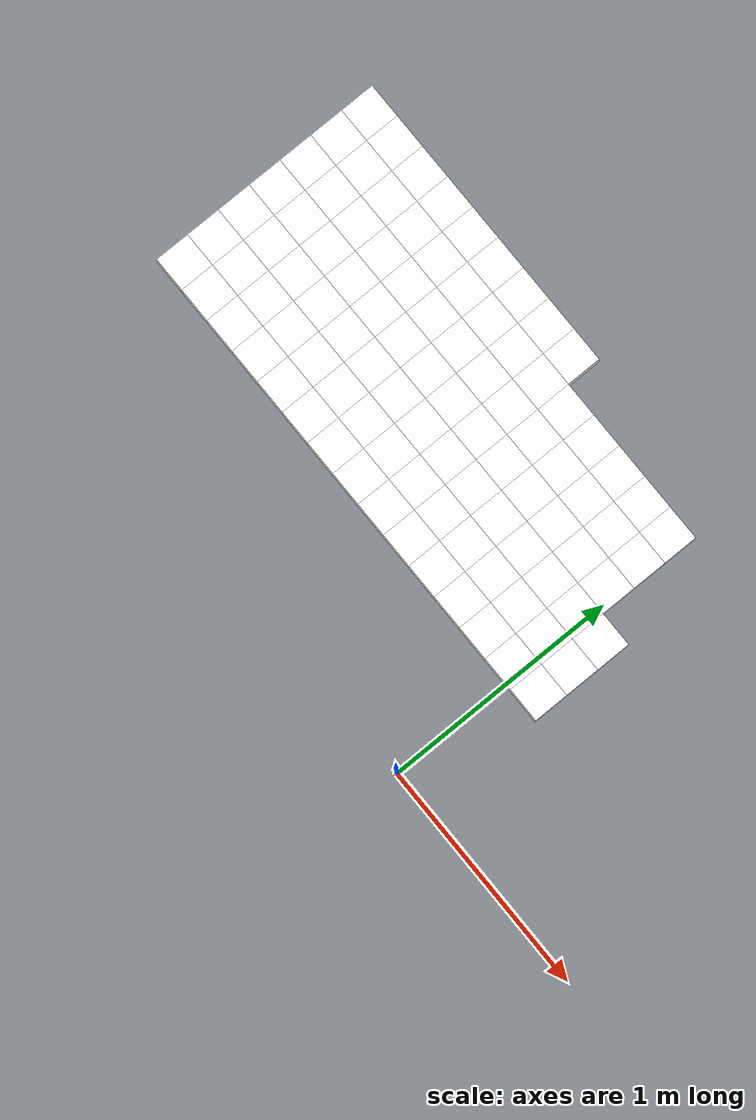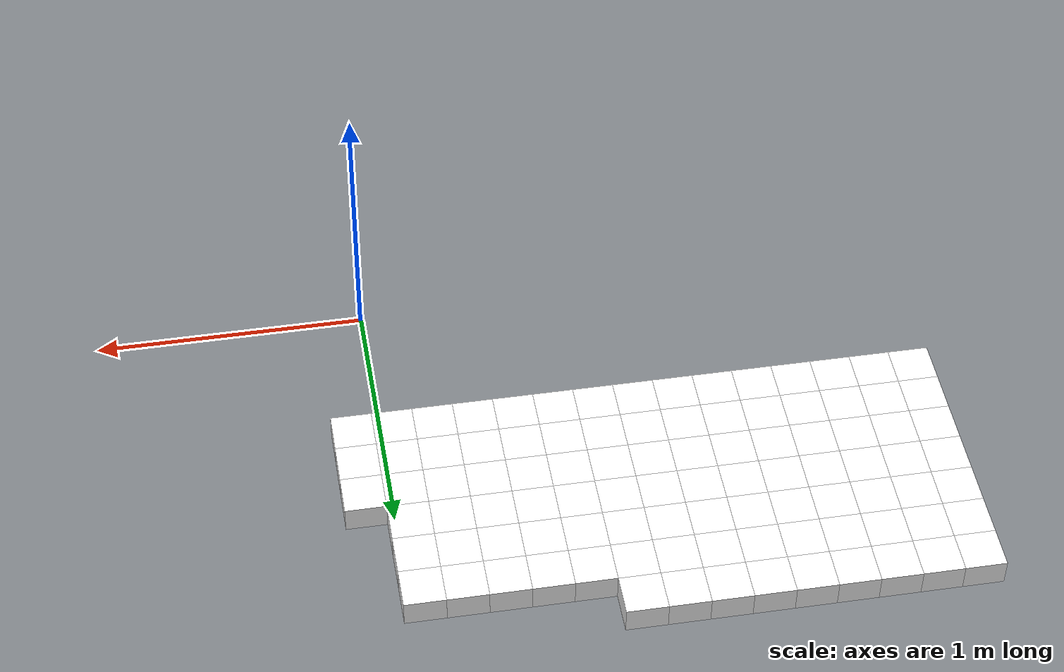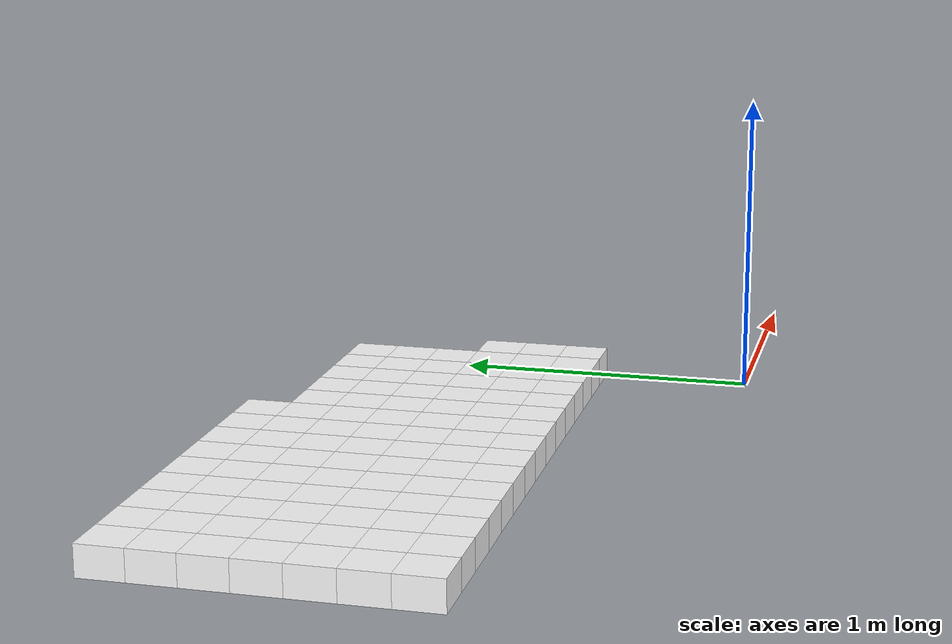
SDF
<sdf version="1.7">
 <world name="default">
  <include><uri>model://sun</uri></include>
  <model name="static_environment">
   <static>true</static>
   <link name="region_0">
    <pose>-2.0 0.6 0.0 0.0 0.0 0.0</pose>
    <collision name="region_0_collision">
     <geometry><box><size>0.15 0.15 0.1</size></box></geometry>
     <surface><friction><ode><mu>1.0</mu><mu2>1.0</mu2></ode></friction></surface>
    </collision>
    <visual name="region_0_visual">
     <geometry><box><size>0.15 0.15 0.1</size></box></geometry>
     <material><ambient>1.0 1.0 1.0 1.0</ambient><diffuse>1.0 1.0 1.0 1.0</diffuse></material>
    </visual>
   </link>
   <link name="region_1">
    <pose>-1.85 0.6 0.0 0.0 0.0 0.0</pose>
    <collision name="region_1_collision">
     <geometry><box><size>0.15 0.15 0.1</size></box></geometry>
     <surface><friction><ode><mu>1.0</mu><mu2>1.0</mu2></ode></friction></surface>
    </collision>
    <visual name="region_1_visual">
     <geometry><box><size>0.15 0.15 0.1</size></box></geometry>
     <material><ambient>1.0 1.0 1.0 1.0</ambient><diffuse>1.0 1.0 1.0 1.0</diffuse></material>
    </visual>
   </link>
   <link name="region_2">
    <pose>-1.7 0.6 0.0 0.0 0.0 0.0</pose>
    <collision name="region_2_collision">
     <geometry><box><size>0.15 0.15 0.1</size></box></geometry>
     <surface><friction><ode><mu>1.0</mu><mu2>1.0</mu2></ode></friction></surface>
    </collision>
    <visual name="region_2_visual">
     <geometry><box><size>0.15 0.15 0.1</size></box></geometry>
     <material><ambient>1.0 1.0 1.0 1.0</ambient><diffuse>1.0 1.0 1.0 1.0</diffuse></material>
    </visual>
   </link>
   <link name="region_3">
    <pose>-1.55 0.6 0.0 0.0 0.0 0.0</pose>
    <collision name="region_3_collision">
     <geometry><box><size>0.15 0.15 0.1</size></box></geometry>
     <surface><friction><ode><mu>1.0</mu><mu2>1.0</mu2></ode></friction></surface>
    </collision>
    <visual name="region_3_visual">
     <geometry><box><size>0.15 0.15 0.1</size></box></geometry>
     <material><ambient>1.0 1.0 1.0 1.0</ambient><diffuse>1.0 1.0 1.0 1.0</diffuse></material>
    </visual>
   </link>
   <link name="region_4">
    <pose>-1.4 0.6 0.0 0.0 0.0 0.0</pose>
    <collision name="region_4_collision">
     <geometry><box><size>0.15 0.15 0.1</size></box></geometry>
     <surface><friction><ode><mu>1.0</mu><mu2>1.0</mu2></ode></friction></surface>
    </collision>
    <visual name="region_4_visual">
     <geometry><box><size>0.15 0.15 0.1</size></box></geometry>
     <material><ambient>1.0 1.0 1.0 1.0</ambient><diffuse>1.0 1.0 1.0 1.0</diffuse></material>
    </visual>
   </link>
   <link name="region_5">
    <pose>-1.25 0.6 0.0 0.0 0.0 0.0</pose>
    <collision name="region_5_collision">
     <geometry><box><size>0.15 0.15 0.1</size></box></geometry>
     <surface><friction><ode><mu>1.0</mu><mu2>1.0</mu2></ode></friction></surface>
    </collision>
    <visual name="region_5_visual">
     <geometry><box><size>0.15 0.15 0.1</size></box></geometry>
     <material><ambient>1.0 1.0 1.0 1.0</ambient><diffuse>1.0 1.0 1.0 1.0</diffuse></material>
    </visual>
   </link>
   <link name="region_6">
    <pose>-1.1 0.6 0.0 0.0 0.0 0.0</pose>
    <collision name="region_6_collision">
     <geometry><box><size>0.15 0.15 0.1</size></box></geometry>
     <surface><friction><ode><mu>1.0</mu><mu2>1.0</mu2></ode></friction></surface>
    </collision>
    <visual name="region_6_visual">
     <geometry><box><size>0.15 0.15 0.1</size></box></geometry>
     <material><ambient>1.0 1.0 1.0 1.0</ambient><diffuse>1.0 1.0 1.0 1.0</diffuse></material>
    </visual>
   </link>
   <link name="region_7">
    <pose>-0.95 0.6 0.0 0.0 0.0 0.0</pose>
    <collision name="region_7_collision">
     <geometry><box><size>0.15 0.15 0.1</size></box></geometry>
     <surface><friction><ode><mu>1.0</mu><mu2>1.0</mu2></ode></friction></surface>
    </collision>
    <visual name="region_7_visual">
     <geometry><box><size>0.15 0.15 0.1</size></box></geometry>
     <material><ambient>1.0 1.0 1.0 1.0</ambient><diffuse>1.0 1.0 1.0 1.0</diffuse></material>
    </visual>
   </link>
   <link name="region_8">
    <pose>-0.8 0.6 0.0 0.0 0.0 0.0</pose>
    <collision name="region_8_collision">
     <geometry><box><size>0.15 0.15 0.1</size></box></geometry>
     <surface><friction><ode><mu>1.0</mu><mu2>1.0</mu2></ode></friction></surface>
    </collision>
    <visual name="region_8_visual">
     <geometry><box><size>0.15 0.15 0.1</size></box></geometry>
     <material><ambient>1.0 1.0 1.0 1.0</ambient><diffuse>1.0 1.0 1.0 1.0</diffuse></material>
    </visual>
   </link>
   <link name="region_9">
    <pose>-0.6500000000000001 0.6 0.0 0.0 0.0 0.0</pose>
    <collision name="region_9_collision">
     <geometry><box><size>0.15 0.15 0.1</size></box></geometry>
     <surface><friction><ode><mu>1.0</mu><mu2>1.0</mu2></ode></friction></surface>
    </collision>
    <visual name="region_9_visual">
     <geometry><box><size>0.15 0.15 0.1</size></box></geometry>
     <material><ambient>1.0 1.0 1.0 1.0</ambient><diffuse>1.0 1.0 1.0 1.0</diffuse></material>
    </visual>
   </link>
   <link name="region_10">
    <pose>-0.5000000000000002 0.6 0.0 0.0 0.0 0.0</pose>
    <collision name="region_10_collision">
     <geometry><box><size>0.15 0.15 0.1</size></box></geometry>
     <surface><friction><ode><mu>1.0</mu><mu2>1.0</mu2></ode></friction></surface>
    </collision>
    <visual name="region_10_visual">
     <geometry><box><size>0.15 0.15 0.1</size></box></geometry>
     <material><ambient>1.0 1.0 1.0 1.0</ambient><diffuse>1.0 1.0 1.0 1.0</diffuse></material>
    </visual>
   </link>
   <link name="region_11">
    <pose>-0.3500000000000003 0.6 0.0 0.0 0.0 0.0</pose>
    <collision name="region_11_collision">
     <geometry><box><size>0.15 0.15 0.1</size></box></geometry>
     <surface><friction><ode><mu>1.0</mu><mu2>1.0</mu2></ode></friction></surface>
    </collision>
    <visual name="region_11_visual">
     <geometry><box><size>0.15 0.15 0.1</size></box></geometry>
     <material><ambient>1.0 1.0 1.0 1.0</ambient><diffuse>1.0 1.0 1.0 1.0</diffuse></material>
    </visual>
   </link>
   <link name="region_12">
    <pose>-0.2000000000000004 0.6 0.0 0.0 0.0 0.0</pose>
    <collision name="region_12_collision">
     <geometry><box><size>0.15 0.15 0.1</size></box></geometry>
     <surface><friction><ode><mu>1.0</mu><mu2>1.0</mu2></ode></friction></surface>
    </collision>
    <visual name="region_12_visual">
     <geometry><box><size>0.15 0.15 0.1</size></box></geometry>
     <material><ambient>1.0 1.0 1.0 1.0</ambient><diffuse>1.0 1.0 1.0 1.0</diffuse></material>
    </visual>
   </link>
   <link name="region_13">
    <pose>-0.05000000000000049 0.6 0.0 0.0 0.0 0.0</pose>
    <collision name="region_13_collision">
     <geometry><box><size>0.15 0.15 0.1</size></box></geometry>
     <surface><friction><ode><mu>1.0</mu><mu2>1.0</mu2></ode></friction></surface>
    </collision>
    <visual name="region_13_visual">
     <geometry><box><size>0.15 0.15 0.1</size></box></geometry>
     <material><ambient>1.0 1.0 1.0 1.0</ambient><diffuse>1.0 1.0 1.0 1.0</diffuse></material>
    </visual>
   </link>
   <link name="region_14">
    <pose>0.09999999999999964 0.6 0.0 0.0 0.0 0.0</pose>
    <collision name="region_14_collision">
     <geometry><box><size>0.15 0.15 0.1</size></box></geometry>
     <surface><friction><ode><mu>1.0</mu><mu2>1.0</mu2></ode></friction></surface>
    </collision>
    <visual name="region_14_visual">
     <geometry><box><size>0.15 0.15 0.1</size></box></geometry>
     <material><ambient>1.0 1.0 1.0 1.0</ambient><diffuse>1.0 1.0 1.0 1.0</diffuse></material>
    </visual>
   </link>
   <link name="region_20">
    <pose>-2.0 0.75 0.0 0.0 0.0 0.0</pose>
    <collision name="region_20_collision">
     <geometry><box><size>0.15 0.15 0.1</size></box></geometry>
     <surface><friction><ode><mu>1.0</mu><mu2>1.0</mu2></ode></friction></surface>
    </collision>
    <visual name="region_20_visual">
     <geometry><box><size>0.15 0.15 0.1</size></box></geometry>
     <material><ambient>1.0 1.0 1.0 1.0</ambient><diffuse>1.0 1.0 1.0 1.0</diffuse></material>
    </visual>
   </link>
   <link name="region_21">
    <pose>-1.85 0.75 0.0 0.0 0.0 0.0</pose>
    <collision name="region_21_collision">
     <geometry><box><size>0.15 0.15 0.1</size></box></geometry>
     <surface><friction><ode><mu>1.0</mu><mu2>1.0</mu2></ode></friction></surface>
    </collision>
    <visual name="region_21_visual">
     <geometry><box><size>0.15 0.15 0.1</size></box></geometry>
     <material><ambient>1.0 1.0 1.0 1.0</ambient><diffuse>1.0 1.0 1.0 1.0</diffuse></material>
    </visual>
   </link>
   <link name="region_22">
    <pose>-1.7 0.75 0.0 0.0 0.0 0.0</pose>
    <collision name="region_22_collision">
     <geometry><box><size>0.15 0.15 0.1</size></box></geometry>
     <surface><friction><ode><mu>1.0</mu><mu2>1.0</mu2></ode></friction></surface>
    </collision>
    <visual name="region_22_visual">
     <geometry><box><size>0.15 0.15 0.1</size></box></geometry>
     <material><ambient>1.0 1.0 1.0 1.0</ambient><diffuse>1.0 1.0 1.0 1.0</diffuse></material>
    </visual>
   </link>
   <link name="region_23">
    <pose>-1.55 0.75 0.0 0.0 0.0 0.0</pose>
    <collision name="region_23_collision">
     <geometry><box><size>0.15 0.15 0.1</size></box></geometry>
     <surface><friction><ode><mu>1.0</mu><mu2>1.0</mu2></ode></friction></surface>
    </collision>
    <visual name="region_23_visual">
     <geometry><box><size>0.15 0.15 0.1</size></box></geometry>
     <material><ambient>1.0 1.0 1.0 1.0</ambient><diffuse>1.0 1.0 1.0 1.0</diffuse></material>
    </visual>
   </link>
   <link name="region_24">
    <pose>-1.4 0.75 0.0 0.0 0.0 0.0</pose>
    <collision name="region_24_collision">
     <geometry><box><size>0.15 0.15 0.1</size></box></geometry>
     <surface><friction><ode><mu>1.0</mu><mu2>1.0</mu2></ode></friction></surface>
    </collision>
    <visual name="region_24_visual">
     <geometry><box><size>0.15 0.15 0.1</size></box></geometry>
     <material><ambient>1.0 1.0 1.0 1.0</ambient><diffuse>1.0 1.0 1.0 1.0</diffuse></material>
    </visual>
   </link>
   <link name="region_25">
    <pose>-1.25 0.75 0.0 0.0 0.0 0.0</pose>
    <collision name="region_25_collision">
     <geometry><box><size>0.15 0.15 0.1</size></box></geometry>
     <surface><friction><ode><mu>1.0</mu><mu2>1.0</mu2></ode></friction></surface>
    </collision>
    <visual name="region_25_visual">
     <geometry><box><size>0.15 0.15 0.1</size></box></geometry>
     <material><ambient>1.0 1.0 1.0 1.0</ambient><diffuse>1.0 1.0 1.0 1.0</diffuse></material>
    </visual>
   </link>
   <link name="region_26">
    <pose>-1.1 0.75 0.0 0.0 0.0 0.0</pose>
    <collision name="region_26_collision">
     <geometry><box><size>0.15 0.15 0.1</size></box></geometry>
     <surface><friction><ode><mu>1.0</mu><mu2>1.0</mu2></ode></friction></surface>
    </collision>
    <visual name="region_26_visual">
     <geometry><box><size>0.15 0.15 0.1</size></box></geometry>
     <material><ambient>1.0 1.0 1.0 1.0</ambient><diffuse>1.0 1.0 1.0 1.0</diffuse></material>
    </visual>
   </link>
   <link name="region_27">
    <pose>-0.95 0.75 0.0 0.0 0.0 0.0</pose>
    <collision name="region_27_collision">
     <geometry><box><size>0.15 0.15 0.1</size></box></geometry>
     <surface><friction><ode><mu>1.0</mu><mu2>1.0</mu2></ode></friction></surface>
    </collision>
    <visual name="region_27_visual">
     <geometry><box><size>0.15 0.15 0.1</size></box></geometry>
     <material><ambient>1.0 1.0 1.0 1.0</ambient><diffuse>1.0 1.0 1.0 1.0</diffuse></material>
    </visual>
   </link>
   <link name="region_28">
    <pose>-0.8 0.75 0.0 0.0 0.0 0.0</pose>
    <collision name="region_28_collision">
     <geometry><box><size>0.15 0.15 0.1</size></box></geometry>
     <surface><friction><ode><mu>1.0</mu><mu2>1.0</mu2></ode></friction></surface>
    </collision>
    <visual name="region_28_visual">
     <geometry><box><size>0.15 0.15 0.1</size></box></geometry>
     <material><ambient>1.0 1.0 1.0 1.0</ambient><diffuse>1.0 1.0 1.0 1.0</diffuse></material>
    </visual>
   </link>
   <link name="region_29">
    <pose>-0.6500000000000001 0.75 0.0 0.0 0.0 0.0</pose>
    <collision name="region_29_collision">
     <geometry><box><size>0.15 0.15 0.1</size></box></geometry>
     <surface><friction><ode><mu>1.0</mu><mu2>1.0</mu2></ode></friction></surface>
    </collision>
    <visual name="region_29_visual">
     <geometry><box><size>0.15 0.15 0.1</size></box></geometry>
     <material><ambient>1.0 1.0 1.0 1.0</ambient><diffuse>1.0 1.0 1.0 1.0</diffuse></material>
    </visual>
   </link>
   <link name="region_30">
    <pose>-0.5000000000000002 0.75 0.0 0.0 0.0 0.0</pose>
    <collision name="region_30_collision">
     <geometry><box><size>0.15 0.15 0.1</size></box></geometry>
     <surface><friction><ode><mu>1.0</mu><mu2>1.0</mu2></ode></friction></surface>
    </collision>
    <visual name="region_30_visual">
     <geometry><box><size>0.15 0.15 0.1</size></box></geometry>
     <material><ambient>1.0 1.0 1.0 1.0</ambient><diffuse>1.0 1.0 1.0 1.0</diffuse></material>
    </visual>
   </link>
   <link name="region_31">
    <pose>-0.3500000000000003 0.75 0.0 0.0 0.0 0.0</pose>
    <collision name="region_31_collision">
     <geometry><box><size>0.15 0.15 0.1</size></box></geometry>
     <surface><friction><ode><mu>1.0</mu><mu2>1.0</mu2></ode></friction></surface>
    </collision>
    <visual name="region_31_visual">
     <geometry><box><size>0.15 0.15 0.1</size></box></geometry>
     <material><ambient>1.0 1.0 1.0 1.0</ambient><diffuse>1.0 1.0 1.0 1.0</diffuse></material>
    </visual>
   </link>
   <link name="region_32">
    <pose>-0.2000000000000004 0.75 0.0 0.0 0.0 0.0</pose>
    <collision name="region_32_collision">
     <geometry><box><size>0.15 0.15 0.1</size></box></geometry>
     <surface><friction><ode><mu>1.0</mu><mu2>1.0</mu2></ode></friction></surface>
    </collision>
    <visual name="region_32_visual">
     <geometry><box><size>0.15 0.15 0.1</size></box></geometry>
     <material><ambient>1.0 1.0 1.0 1.0</ambient><diffuse>1.0 1.0 1.0 1.0</diffuse></material>
    </visual>
   </link>
   <link name="region_33">
    <pose>-0.05000000000000049 0.75 0.0 0.0 0.0 0.0</pose>
    <collision name="region_33_collision">
     <geometry><box><size>0.15 0.15 0.1</size></box></geometry>
     <surface><friction><ode><mu>1.0</mu><mu2>1.0</mu2></ode></friction></surface>
    </collision>
    <visual name="region_33_visual">
     <geometry><box><size>0.15 0.15 0.1</size></box></geometry>
     <material><ambient>1.0 1.0 1.0 1.0</ambient><diffuse>1.0 1.0 1.0 1.0</diffuse></material>
    </visual>
   </link>
   <link name="region_34">
    <pose>0.09999999999999964 0.75 0.0 0.0 0.0 0.0</pose>
    <collision name="region_34_collision">
     <geometry><box><size>0.15 0.15 0.1</size></box></geometry>
     <surface><friction><ode><mu>1.0</mu><mu2>1.0</mu2></ode></friction></surface>
    </collision>
    <visual name="region_34_visual">
     <geometry><box><size>0.15 0.15 0.1</size></box></geometry>
     <material><ambient>1.0 1.0 1.0 1.0</ambient><diffuse>1.0 1.0 1.0 1.0</diffuse></material>
    </visual>
   </link>
   <link name="region_40">
    <pose>-2.0 0.8999999999999999 0.0 0.0 0.0 0.0</pose>
    <collision name="region_40_collision">
     <geometry><box><size>0.15 0.15 0.1</size></box></geometry>
     <surface><friction><ode><mu>1.0</mu><mu2>1.0</mu2></ode></friction></surface>
    </collision>
    <visual name="region_40_visual">
     <geometry><box><size>0.15 0.15 0.1</size></box></geometry>
     <material><ambient>1.0 1.0 1.0 1.0</ambient><diffuse>1.0 1.0 1.0 1.0</diffuse></material>
    </visual>
   </link>
   <link name="region_41">
    <pose>-1.85 0.8999999999999999 0.0 0.0 0.0 0.0</pose>
    <collision name="region_41_collision">
     <geometry><box><size>0.15 0.15 0.1</size></box></geometry>
     <surface><friction><ode><mu>1.0</mu><mu2>1.0</mu2></ode></friction></surface>
    </collision>
    <visual name="region_41_visual">
     <geometry><box><size>0.15 0.15 0.1</size></box></geometry>
     <material><ambient>1.0 1.0 1.0 1.0</ambient><diffuse>1.0 1.0 1.0 1.0</diffuse></material>
    </visual>
   </link>
   <link name="region_42">
    <pose>-1.7 0.8999999999999999 0.0 0.0 0.0 0.0</pose>
    <collision name="region_42_collision">
     <geometry><box><size>0.15 0.15 0.1</size></box></geometry>
     <surface><friction><ode><mu>1.0</mu><mu2>1.0</mu2></ode></friction></surface>
    </collision>
    <visual name="region_42_visual">
     <geometry><box><size>0.15 0.15 0.1</size></box></geometry>
     <material><ambient>1.0 1.0 1.0 1.0</ambient><diffuse>1.0 1.0 1.0 1.0</diffuse></material>
    </visual>
   </link>
   <link name="region_43">
    <pose>-1.55 0.8999999999999999 0.0 0.0 0.0 0.0</pose>
    <collision name="region_43_collision">
     <geometry><box><size>0.15 0.15 0.1</size></box></geometry>
     <surface><friction><ode><mu>1.0</mu><mu2>1.0</mu2></ode></friction></surface>
    </collision>
    <visual name="region_43_visual">
     <geometry><box><size>0.15 0.15 0.1</size></box></geometry>
     <material><ambient>1.0 1.0 1.0 1.0</ambient><diffuse>1.0 1.0 1.0 1.0</diffuse></material>
    </visual>
   </link>
   <link name="region_44">
    <pose>-1.4 0.8999999999999999 0.0 0.0 0.0 0.0</pose>
    <collision name="region_44_collision">
     <geometry><box><size>0.15 0.15 0.1</size></box></geometry>
     <surface><friction><ode><mu>1.0</mu><mu2>1.0</mu2></ode></friction></surface>
    </collision>
    <visual name="region_44_visual">
     <geometry><box><size>0.15 0.15 0.1</size></box></geometry>
     <material><ambient>1.0 1.0 1.0 1.0</ambient><diffuse>1.0 1.0 1.0 1.0</diffuse></material>
    </visual>
   </link>
   <link name="region_45">
    <pose>-1.25 0.8999999999999999 0.0 0.0 0.0 0.0</pose>
    <collision name="region_45_collision">
     <geometry><box><size>0.15 0.15 0.1</size></box></geometry>
     <surface><friction><ode><mu>1.0</mu><mu2>1.0</mu2></ode></friction></surface>
    </collision>
    <visual name="region_45_visual">
     <geometry><box><size>0.15 0.15 0.1</size></box></geometry>
     <material><ambient>1.0 1.0 1.0 1.0</ambient><diffuse>1.0 1.0 1.0 1.0</diffuse></material>
    </visual>
   </link>
   <link name="region_46">
    <pose>-1.1 0.8999999999999999 0.0 0.0 0.0 0.0</pose>
    <collision name="region_46_collision">
     <geometry><box><size>0.15 0.15 0.1</size></box></geometry>
     <surface><friction><ode><mu>1.0</mu><mu2>1.0</mu2></ode></friction></surface>
    </collision>
    <visual name="region_46_visual">
     <geometry><box><size>0.15 0.15 0.1</size></box></geometry>
     <material><ambient>1.0 1.0 1.0 1.0</ambient><diffuse>1.0 1.0 1.0 1.0</diffuse></material>
    </visual>
   </link>
   <link name="region_47">
    <pose>-0.95 0.8999999999999999 0.0 0.0 0.0 0.0</pose>
    <collision name="region_47_collision">
     <geometry><box><size>0.15 0.15 0.1</size></box></geometry>
     <surface><friction><ode><mu>1.0</mu><mu2>1.0</mu2></ode></friction></surface>
    </collision>
    <visual name="region_47_visual">
     <geometry><box><size>0.15 0.15 0.1</size></box></geometry>
     <material><ambient>1.0 1.0 1.0 1.0</ambient><diffuse>1.0 1.0 1.0 1.0</diffuse></material>
    </visual>
   </link>
   <link name="region_48">
    <pose>-0.8 0.8999999999999999 0.0 0.0 0.0 0.0</pose>
    <collision name="region_48_collision">
     <geometry><box><size>0.15 0.15 0.1</size></box></geometry>
     <surface><friction><ode><mu>1.0</mu><mu2>1.0</mu2></ode></friction></surface>
    </collision>
    <visual name="region_48_visual">
     <geometry><box><size>0.15 0.15 0.1</size></box></geometry>
     <material><ambient>1.0 1.0 1.0 1.0</ambient><diffuse>1.0 1.0 1.0 1.0</diffuse></material>
    </visual>
   </link>
   <link name="region_49">
    <pose>-0.6500000000000001 0.8999999999999999 0.0 0.0 0.0 0.0</pose>
    <collision name="region_49_collision">
     <geometry><box><size>0.15 0.15 0.1</size></box></geometry>
     <surface><friction><ode><mu>1.0</mu><mu2>1.0</mu2></ode></friction></surface>
    </collision>
    <visual name="region_49_visual">
     <geometry><box><size>0.15 0.15 0.1</size></box></geometry>
     <material><ambient>1.0 1.0 1.0 1.0</ambient><diffuse>1.0 1.0 1.0 1.0</diffuse></material>
    </visual>
   </link>
   <link name="region_50">
    <pose>-0.5000000000000002 0.8999999999999999 0.0 0.0 0.0 0.0</pose>
    <collision name="region_50_collision">
     <geometry><box><size>0.15 0.15 0.1</size></box></geometry>
     <surface><friction><ode><mu>1.0</mu><mu2>1.0</mu2></ode></friction></surface>
    </collision>
    <visual name="region_50_visual">
     <geometry><box><size>0.15 0.15 0.1</size></box></geometry>
     <material><ambient>1.0 1.0 1.0 1.0</ambient><diffuse>1.0 1.0 1.0 1.0</diffuse></material>
    </visual>
   </link>
   <link name="region_51">
    <pose>-0.3500000000000003 0.8999999999999999 0.0 0.0 0.0 0.0</pose>
    <collision name="region_51_collision">
     <geometry><box><size>0.15 0.15 0.1</size></box></geometry>
     <surface><friction><ode><mu>1.0</mu><mu2>1.0</mu2></ode></friction></surface>
    </collision>
    <visual name="region_51_visual">
     <geometry><box><size>0.15 0.15 0.1</size></box></geometry>
     <material><ambient>1.0 1.0 1.0 1.0</ambient><diffuse>1.0 1.0 1.0 1.0</diffuse></material>
    </visual>
   </link>
   <link name="region_52">
    <pose>-0.2000000000000004 0.8999999999999999 0.0 0.0 0.0 0.0</pose>
    <collision name="region_52_collision">
     <geometry><box><size>0.15 0.15 0.1</size></box></geometry>
     <surface><friction><ode><mu>1.0</mu><mu2>1.0</mu2></ode></friction></surface>
    </collision>
    <visual name="region_52_visual">
     <geometry><box><size>0.15 0.15 0.1</size></box></geometry>
     <material><ambient>1.0 1.0 1.0 1.0</ambient><diffuse>1.0 1.0 1.0 1.0</diffuse></material>
    </visual>
   </link>
   <link name="region_53">
    <pose>-0.05000000000000049 0.8999999999999999 0.0 0.0 0.0 0.0</pose>
    <collision name="region_53_collision">
     <geometry><box><size>0.15 0.15 0.1</size></box></geometry>
     <surface><friction><ode><mu>1.0</mu><mu2>1.0</mu2></ode></friction></surface>
    </collision>
    <visual name="region_53_visual">
     <geometry><box><size>0.15 0.15 0.1</size></box></geometry>
     <material><ambient>1.0 1.0 1.0 1.0</ambient><diffuse>1.0 1.0 1.0 1.0</diffuse></material>
    </visual>
   </link>
   <link name="region_54">
    <pose>0.09999999999999964 0.8999999999999999 0.0 0.0 0.0 0.0</pose>
    <collision name="region_54_collision">
     <geometry><box><size>0.15 0.15 0.1</size></box></geometry>
     <surface><friction><ode><mu>1.0</mu><mu2>1.0</mu2></ode></friction></surface>
    </collision>
    <visual name="region_54_visual">
     <geometry><box><size>0.15 0.15 0.1</size></box></geometry>
     <material><ambient>1.0 1.0 1.0 1.0</ambient><diffuse>1.0 1.0 1.0 1.0</diffuse></material>
    </visual>
   </link>
   <link name="region_60">
    <pose>-2.0 1.0499999999999998 0.0 0.0 0.0 0.0</pose>
    <collision name="region_60_collision">
     <geometry><box><size>0.15 0.15 0.1</size></box></geometry>
     <surface><friction><ode><mu>1.0</mu><mu2>1.0</mu2></ode></friction></surface>
    </collision>
    <visual name="region_60_visual">
     <geometry><box><size>0.15 0.15 0.1</size></box></geometry>
     <material><ambient>1.0 1.0 1.0 1.0</ambient><diffuse>1.0 1.0 1.0 1.0</diffuse></material>
    </visual>
   </link>
   <link name="region_61">
    <pose>-1.85 1.0499999999999998 0.0 0.0 0.0 0.0</pose>
    <collision name="region_61_collision">
     <geometry><box><size>0.15 0.15 0.1</size></box></geometry>
     <surface><friction><ode><mu>1.0</mu><mu2>1.0</mu2></ode></friction></surface>
    </collision>
    <visual name="region_61_visual">
     <geometry><box><size>0.15 0.15 0.1</size></box></geometry>
     <material><ambient>1.0 1.0 1.0 1.0</ambient><diffuse>1.0 1.0 1.0 1.0</diffuse></material>
    </visual>
   </link>
   <link name="region_62">
    <pose>-1.7 1.0499999999999998 0.0 0.0 0.0 0.0</pose>
    <collision name="region_62_collision">
     <geometry><box><size>0.15 0.15 0.1</size></box></geometry>
     <surface><friction><ode><mu>1.0</mu><mu2>1.0</mu2></ode></friction></surface>
    </collision>
    <visual name="region_62_visual">
     <geometry><box><size>0.15 0.15 0.1</size></box></geometry>
     <material><ambient>1.0 1.0 1.0 1.0</ambient><diffuse>1.0 1.0 1.0 1.0</diffuse></material>
    </visual>
   </link>
   <link name="region_63">
    <pose>-1.55 1.0499999999999998 0.0 0.0 0.0 0.0</pose>
    <collision name="region_63_collision">
     <geometry><box><size>0.15 0.15 0.1</size></box></geometry>
     <surface><friction><ode><mu>1.0</mu><mu2>1.0</mu2></ode></friction></surface>
    </collision>
    <visual name="region_63_visual">
     <geometry><box><size>0.15 0.15 0.1</size></box></geometry>
     <material><ambient>1.0 1.0 1.0 1.0</ambient><diffuse>1.0 1.0 1.0 1.0</diffuse></material>
    </visual>
   </link>
   <link name="region_64">
    <pose>-1.4 1.0499999999999998 0.0 0.0 0.0 0.0</pose>
    <collision name="region_64_collision">
     <geometry><box><size>0.15 0.15 0.1</size></box></geometry>
     <surface><friction><ode><mu>1.0</mu><mu2>1.0</mu2></ode></friction></surface>
    </collision>
    <visual name="region_64_visual">
     <geometry><box><size>0.15 0.15 0.1</size></box></geometry>
     <material><ambient>1.0 1.0 1.0 1.0</ambient><diffuse>1.0 1.0 1.0 1.0</diffuse></material>
    </visual>
   </link>
   <link name="region_65">
    <pose>-1.25 1.0499999999999998 0.0 0.0 0.0 0.0</pose>
    <collision name="region_65_collision">
     <geometry><box><size>0.15 0.15 0.1</size></box></geometry>
     <surface><friction><ode><mu>1.0</mu><mu2>1.0</mu2></ode></friction></surface>
    </collision>
    <visual name="region_65_visual">
     <geometry><box><size>0.15 0.15 0.1</size></box></geometry>
     <material><ambient>1.0 1.0 1.0 1.0</ambient><diffuse>1.0 1.0 1.0 1.0</diffuse></material>
    </visual>
   </link>
   <link name="region_66">
    <pose>-1.1 1.0499999999999998 0.0 0.0 0.0 0.0</pose>
    <collision name="region_66_collision">
     <geometry><box><size>0.15 0.15 0.1</size></box></geometry>
     <surface><friction><ode><mu>1.0</mu><mu2>1.0</mu2></ode></friction></surface>
    </collision>
    <visual name="region_66_visual">
     <geometry><box><size>0.15 0.15 0.1</size></box></geometry>
     <material><ambient>1.0 1.0 1.0 1.0</ambient><diffuse>1.0 1.0 1.0 1.0</diffuse></material>
    </visual>
   </link>
   <link name="region_67">
    <pose>-0.95 1.0499999999999998 0.0 0.0 0.0 0.0</pose>
    <collision name="region_67_collision">
     <geometry><box><size>0.15 0.15 0.1</size></box></geometry>
     <surface><friction><ode><mu>1.0</mu><mu2>1.0</mu2></ode></friction></surface>
    </collision>
    <visual name="region_67_visual">
     <geometry><box><size>0.15 0.15 0.1</size></box></geometry>
     <material><ambient>1.0 1.0 1.0 1.0</ambient><diffuse>1.0 1.0 1.0 1.0</diffuse></material>
    </visual>
   </link>
   <link name="region_68">
    <pose>-0.8 1.0499999999999998 0.0 0.0 0.0 0.0</pose>
    <collision name="region_68_collision">
     <geometry><box><size>0.15 0.15 0.1</size></box></geometry>
     <surface><friction><ode><mu>1.0</mu><mu2>1.0</mu2></ode></friction></surface>
    </collision>
    <visual name="region_68_visual">
     <geometry><box><size>0.15 0.15 0.1</size></box></geometry>
     <material><ambient>1.0 1.0 1.0 1.0</ambient><diffuse>1.0 1.0 1.0 1.0</diffuse></material>
    </visual>
   </link>
   <link name="region_69">
    <pose>-0.6500000000000001 1.0499999999999998 0.0 0.0 0.0 0.0</pose>
    <collision name="region_69_collision">
     <geometry><box><size>0.15 0.15 0.1</size></box></geometry>
     <surface><friction><ode><mu>1.0</mu><mu2>1.0</mu2></ode></friction></surface>
    </collision>
    <visual name="region_69_visual">
     <geometry><box><size>0.15 0.15 0.1</size></box></geometry>
     <material><ambient>1.0 1.0 1.0 1.0</ambient><diffuse>1.0 1.0 1.0 1.0</diffuse></material>
    </visual>
   </link>
   <link name="region_70">
    <pose>-0.5000000000000002 1.0499999999999998 0.0 0.0 0.0 0.0</pose>
    <collision name="region_70_collision">
     <geometry><box><size>0.15 0.15 0.1</size></box></geometry>
     <surface><friction><ode><mu>1.0</mu><mu2>1.0</mu2></ode></friction></surface>
    </collision>
    <visual name="region_70_visual">
     <geometry><box><size>0.15 0.15 0.1</size></box></geometry>
     <material><ambient>1.0 1.0 1.0 1.0</ambient><diffuse>1.0 1.0 1.0 1.0</diffuse></material>
    </visual>
   </link>
   <link name="region_71">
    <pose>-0.3500000000000003 1.0499999999999998 0.0 0.0 0.0 0.0</pose>
    <collision name="region_71_collision">
     <geometry><box><size>0.15 0.15 0.1</size></box></geometry>
     <surface><friction><ode><mu>1.0</mu><mu2>1.0</mu2></ode></friction></surface>
    </collision>
    <visual name="region_71_visual">
     <geometry><box><size>0.15 0.15 0.1</size></box></geometry>
     <material><ambient>1.0 1.0 1.0 1.0</ambient><diffuse>1.0 1.0 1.0 1.0</diffuse></material>
    </visual>
   </link>
   <link name="region_72">
    <pose>-0.2000000000000004 1.0499999999999998 0.0 0.0 0.0 0.0</pose>
    <collision name="region_72_collision">
     <geometry><box><size>0.15 0.15 0.1</size></box></geometry>
     <surface><friction><ode><mu>1.0</mu><mu2>1.0</mu2></ode></friction></surface>
    </collision>
    <visual name="region_72_visual">
     <geometry><box><size>0.15 0.15 0.1</size></box></geometry>
     <material><ambient>1.0 1.0 1.0 1.0</ambient><diffuse>1.0 1.0 1.0 1.0</diffuse></material>
    </visual>
   </link>
   <link name="region_73">
    <pose>-0.05000000000000049 1.0499999999999998 0.0 0.0 0.0 0.0</pose>
    <collision name="region_73_collision">
     <geometry><box><size>0.15 0.15 0.1</size></box></geometry>
     <surface><friction><ode><mu>1.0</mu><mu2>1.0</mu2></ode></friction></surface>
    </collision>
    <visual name="region_73_visual">
     <geometry><box><size>0.15 0.15 0.1</size></box></geometry>
     <material><ambient>1.0 1.0 1.0 1.0</ambient><diffuse>1.0 1.0 1.0 1.0</diffuse></material>
    </visual>
   </link>
   <link name="region_80">
    <pose>-2.0 1.2 0.0 0.0 0.0 0.0</pose>
    <collision name="region_80_collision">
     <geometry><box><size>0.15 0.15 0.1</size></box></geometry>
     <surface><friction><ode><mu>1.0</mu><mu2>1.0</mu2></ode></friction></surface>
    </collision>
    <visual name="region_80_visual">
     <geometry><box><size>0.15 0.15 0.1</size></box></geometry>
     <material><ambient>1.0 1.0 1.0 1.0</ambient><diffuse>1.0 1.0 1.0 1.0</diffuse></material>
    </visual>
   </link>
   <link name="region_81">
    <pose>-1.85 1.2 0.0 0.0 0.0 0.0</pose>
    <collision name="region_81_collision">
     <geometry><box><size>0.15 0.15 0.1</size></box></geometry>
     <surface><friction><ode><mu>1.0</mu><mu2>1.0</mu2></ode></friction></surface>
    </collision>
    <visual name="region_81_visual">
     <geometry><box><size>0.15 0.15 0.1</size></box></geometry>
     <material><ambient>1.0 1.0 1.0 1.0</ambient><diffuse>1.0 1.0 1.0 1.0</diffuse></material>
    </visual>
   </link>
   <link name="region_82">
    <pose>-1.7 1.2 0.0 0.0 0.0 0.0</pose>
    <collision name="region_82_collision">
     <geometry><box><size>0.15 0.15 0.1</size></box></geometry>
     <surface><friction><ode><mu>1.0</mu><mu2>1.0</mu2></ode></friction></surface>
    </collision>
    <visual name="region_82_visual">
     <geometry><box><size>0.15 0.15 0.1</size></box></geometry>
     <material><ambient>1.0 1.0 1.0 1.0</ambient><diffuse>1.0 1.0 1.0 1.0</diffuse></material>
    </visual>
   </link>
   <link name="region_83">
    <pose>-1.55 1.2 0.0 0.0 0.0 0.0</pose>
    <collision name="region_83_collision">
     <geometry><box><size>0.15 0.15 0.1</size></box></geometry>
     <surface><friction><ode><mu>1.0</mu><mu2>1.0</mu2></ode></friction></surface>
    </collision>
    <visual name="region_83_visual">
     <geometry><box><size>0.15 0.15 0.1</size></box></geometry>
     <material><ambient>1.0 1.0 1.0 1.0</ambient><diffuse>1.0 1.0 1.0 1.0</diffuse></material>
    </visual>
   </link>
   <link name="region_84">
    <pose>-1.4 1.2 0.0 0.0 0.0 0.0</pose>
    <collision name="region_84_collision">
     <geometry><box><size>0.15 0.15 0.1</size></box></geometry>
     <surface><friction><ode><mu>1.0</mu><mu2>1.0</mu2></ode></friction></surface>
    </collision>
    <visual name="region_84_visual">
     <geometry><box><size>0.15 0.15 0.1</size></box></geometry>
     <material><ambient>1.0 1.0 1.0 1.0</ambient><diffuse>1.0 1.0 1.0 1.0</diffuse></material>
    </visual>
   </link>
   <link name="region_85">
    <pose>-1.25 1.2 0.0 0.0 0.0 0.0</pose>
    <collision name="region_85_collision">
     <geometry><box><size>0.15 0.15 0.1</size></box></geometry>
     <surface><friction><ode><mu>1.0</mu><mu2>1.0</mu2></ode></friction></surface>
    </collision>
    <visual name="region_85_visual">
     <geometry><box><size>0.15 0.15 0.1</size></box></geometry>
     <material><ambient>1.0 1.0 1.0 1.0</ambient><diffuse>1.0 1.0 1.0 1.0</diffuse></material>
    </visual>
   </link>
   <link name="region_86">
    <pose>-1.1 1.2 0.0 0.0 0.0 0.0</pose>
    <collision name="region_86_collision">
     <geometry><box><size>0.15 0.15 0.1</size></box></geometry>
     <surface><friction><ode><mu>1.0</mu><mu2>1.0</mu2></ode></friction></surface>
    </collision>
    <visual name="region_86_visual">
     <geometry><box><size>0.15 0.15 0.1</size></box></geometry>
     <material><ambient>1.0 1.0 1.0 1.0</ambient><diffuse>1.0 1.0 1.0 1.0</diffuse></material>
    </visual>
   </link>
   <link name="region_87">
    <pose>-0.95 1.2 0.0 0.0 0.0 0.0</pose>
    <collision name="region_87_collision">
     <geometry><box><size>0.15 0.15 0.1</size></box></geometry>
     <surface><friction><ode><mu>1.0</mu><mu2>1.0</mu2></ode></friction></surface>
    </collision>
    <visual name="region_87_visual">
     <geometry><box><size>0.15 0.15 0.1</size></box></geometry>
     <material><ambient>1.0 1.0 1.0 1.0</ambient><diffuse>1.0 1.0 1.0 1.0</diffuse></material>
    </visual>
   </link>
   <link name="region_88">
    <pose>-0.8 1.2 0.0 0.0 0.0 0.0</pose>
    <collision name="region_88_collision">
     <geometry><box><size>0.15 0.15 0.1</size></box></geometry>
     <surface><friction><ode><mu>1.0</mu><mu2>1.0</mu2></ode></friction></surface>
    </collision>
    <visual name="region_88_visual">
     <geometry><box><size>0.15 0.15 0.1</size></box></geometry>
     <material><ambient>1.0 1.0 1.0 1.0</ambient><diffuse>1.0 1.0 1.0 1.0</diffuse></material>
    </visual>
   </link>
   <link name="region_89">
    <pose>-0.6500000000000001 1.2 0.0 0.0 0.0 0.0</pose>
    <collision name="region_89_collision">
     <geometry><box><size>0.15 0.15 0.1</size></box></geometry>
     <surface><friction><ode><mu>1.0</mu><mu2>1.0</mu2></ode></friction></surface>
    </collision>
    <visual name="region_89_visual">
     <geometry><box><size>0.15 0.15 0.1</size></box></geometry>
     <material><ambient>1.0 1.0 1.0 1.0</ambient><diffuse>1.0 1.0 1.0 1.0</diffuse></material>
    </visual>
   </link>
   <link name="region_90">
    <pose>-0.5000000000000002 1.2 0.0 0.0 0.0 0.0</pose>
    <collision name="region_90_collision">
     <geometry><box><size>0.15 0.15 0.1</size></box></geometry>
     <surface><friction><ode><mu>1.0</mu><mu2>1.0</mu2></ode></friction></surface>
    </collision>
    <visual name="region_90_visual">
     <geometry><box><size>0.15 0.15 0.1</size></box></geometry>
     <material><ambient>1.0 1.0 1.0 1.0</ambient><diffuse>1.0 1.0 1.0 1.0</diffuse></material>
    </visual>
   </link>
   <link name="region_91">
    <pose>-0.3500000000000003 1.2 0.0 0.0 0.0 0.0</pose>
    <collision name="region_91_collision">
     <geometry><box><size>0.15 0.15 0.1</size></box></geometry>
     <surface><friction><ode><mu>1.0</mu><mu2>1.0</mu2></ode></friction></surface>
    </collision>
    <visual name="region_91_visual">
     <geometry><box><size>0.15 0.15 0.1</size></box></geometry>
     <material><ambient>1.0 1.0 1.0 1.0</ambient><diffuse>1.0 1.0 1.0 1.0</diffuse></material>
    </visual>
   </link>
   <link name="region_92">
    <pose>-0.2000000000000004 1.2 0.0 0.0 0.0 0.0</pose>
    <collision name="region_92_collision">
     <geometry><box><size>0.15 0.15 0.1</size></box></geometry>
     <surface><friction><ode><mu>1.0</mu><mu2>1.0</mu2></ode></friction></surface>
    </collision>
    <visual name="region_92_visual">
     <geometry><box><size>0.15 0.15 0.1</size></box></geometry>
     <material><ambient>1.0 1.0 1.0 1.0</ambient><diffuse>1.0 1.0 1.0 1.0</diffuse></material>
    </visual>
   </link>
   <link name="region_93">
    <pose>-0.05000000000000049 1.2 0.0 0.0 0.0 0.0</pose>
    <collision name="region_93_collision">
     <geometry><box><size>0.15 0.15 0.1</size></box></geometry>
     <surface><friction><ode><mu>1.0</mu><mu2>1.0</mu2></ode></friction></surface>
    </collision>
    <visual name="region_93_visual">
     <geometry><box><size>0.15 0.15 0.1</size></box></geometry>
     <material><ambient>1.0 1.0 1.0 1.0</ambient><diffuse>1.0 1.0 1.0 1.0</diffuse></material>
    </visual>
   </link>
   <link name="region_100">
    <pose>-2.0 1.35 0.0 0.0 0.0 0.0</pose>
    <collision name="region_100_collision">
     <geometry><box><size>0.15 0.15 0.1</size></box></geometry>
     <surface><friction><ode><mu>1.0</mu><mu2>1.0</mu2></ode></friction></surface>
    </collision>
    <visual name="region_100_visual">
     <geometry><box><size>0.15 0.15 0.1</size></box></geometry>
     <material><ambient>1.0 1.0 1.0 1.0</ambient><diffuse>1.0 1.0 1.0 1.0</diffuse></material>
    </visual>
   </link>
   <link name="region_101">
    <pose>-1.85 1.35 0.0 0.0 0.0 0.0</pose>
    <collision name="region_101_collision">
     <geometry><box><size>0.15 0.15 0.1</size></box></geometry>
     <surface><friction><ode><mu>1.0</mu><mu2>1.0</mu2></ode></friction></surface>
    </collision>
    <visual name="region_101_visual">
     <geometry><box><size>0.15 0.15 0.1</size></box></geometry>
     <material><ambient>1.0 1.0 1.0 1.0</ambient><diffuse>1.0 1.0 1.0 1.0</diffuse></material>
    </visual>
   </link>
   <link name="region_102">
    <pose>-1.7 1.35 0.0 0.0 0.0 0.0</pose>
    <collision name="region_102_collision">
     <geometry><box><size>0.15 0.15 0.1</size></box></geometry>
     <surface><friction><ode><mu>1.0</mu><mu2>1.0</mu2></ode></friction></surface>
    </collision>
    <visual name="region_102_visual">
     <geometry><box><size>0.15 0.15 0.1</size></box></geometry>
     <material><ambient>1.0 1.0 1.0 1.0</ambient><diffuse>1.0 1.0 1.0 1.0</diffuse></material>
    </visual>
   </link>
   <link name="region_103">
    <pose>-1.55 1.35 0.0 0.0 0.0 0.0</pose>
    <collision name="region_103_collision">
     <geometry><box><size>0.15 0.15 0.1</size></box></geometry>
     <surface><friction><ode><mu>1.0</mu><mu2>1.0</mu2></ode></friction></surface>
    </collision>
    <visual name="region_103_visual">
     <geometry><box><size>0.15 0.15 0.1</size></box></geometry>
     <material><ambient>1.0 1.0 1.0 1.0</ambient><diffuse>1.0 1.0 1.0 1.0</diffuse></material>
    </visual>
   </link>
   <link name="region_104">
    <pose>-1.4 1.35 0.0 0.0 0.0 0.0</pose>
    <collision name="region_104_collision">
     <geometry><box><size>0.15 0.15 0.1</size></box></geometry>
     <surface><friction><ode><mu>1.0</mu><mu2>1.0</mu2></ode></friction></surface>
    </collision>
    <visual name="region_104_visual">
     <geometry><box><size>0.15 0.15 0.1</size></box></geometry>
     <material><ambient>1.0 1.0 1.0 1.0</ambient><diffuse>1.0 1.0 1.0 1.0</diffuse></material>
    </visual>
   </link>
   <link name="region_105">
    <pose>-1.25 1.35 0.0 0.0 0.0 0.0</pose>
    <collision name="region_105_collision">
     <geometry><box><size>0.15 0.15 0.1</size></box></geometry>
     <surface><friction><ode><mu>1.0</mu><mu2>1.0</mu2></ode></friction></surface>
    </collision>
    <visual name="region_105_visual">
     <geometry><box><size>0.15 0.15 0.1</size></box></geometry>
     <material><ambient>1.0 1.0 1.0 1.0</ambient><diffuse>1.0 1.0 1.0 1.0</diffuse></material>
    </visual>
   </link>
   <link name="region_106">
    <pose>-1.1 1.35 0.0 0.0 0.0 0.0</pose>
    <collision name="region_106_collision">
     <geometry><box><size>0.15 0.15 0.1</size></box></geometry>
     <surface><friction><ode><mu>1.0</mu><mu2>1.0</mu2></ode></friction></surface>
    </collision>
    <visual name="region_106_visual">
     <geometry><box><size>0.15 0.15 0.1</size></box></geometry>
     <material><ambient>1.0 1.0 1.0 1.0</ambient><diffuse>1.0 1.0 1.0 1.0</diffuse></material>
    </visual>
   </link>
   <link name="region_107">
    <pose>-0.95 1.35 0.0 0.0 0.0 0.0</pose>
    <collision name="region_107_collision">
     <geometry><box><size>0.15 0.15 0.1</size></box></geometry>
     <surface><friction><ode><mu>1.0</mu><mu2>1.0</mu2></ode></friction></surface>
    </collision>
    <visual name="region_107_visual">
     <geometry><box><size>0.15 0.15 0.1</size></box></geometry>
     <material><ambient>1.0 1.0 1.0 1.0</ambient><diffuse>1.0 1.0 1.0 1.0</diffuse></material>
    </visual>
   </link>
   <link name="region_108">
    <pose>-0.8 1.35 0.0 0.0 0.0 0.0</pose>
    <collision name="region_108_collision">
     <geometry><box><size>0.15 0.15 0.1</size></box></geometry>
     <surface><friction><ode><mu>1.0</mu><mu2>1.0</mu2></ode></friction></surface>
    </collision>
    <visual name="region_108_visual">
     <geometry><box><size>0.15 0.15 0.1</size></box></geometry>
     <material><ambient>1.0 1.0 1.0 1.0</ambient><diffuse>1.0 1.0 1.0 1.0</diffuse></material>
    </visual>
   </link>
   <link name="region_109">
    <pose>-0.6500000000000001 1.35 0.0 0.0 0.0 0.0</pose>
    <collision name="region_109_collision">
     <geometry><box><size>0.15 0.15 0.1</size></box></geometry>
     <surface><friction><ode><mu>1.0</mu><mu2>1.0</mu2></ode></friction></surface>
    </collision>
    <visual name="region_109_visual">
     <geometry><box><size>0.15 0.15 0.1</size></box></geometry>
     <material><ambient>1.0 1.0 1.0 1.0</ambient><diffuse>1.0 1.0 1.0 1.0</diffuse></material>
    </visual>
   </link>
   <link name="region_110">
    <pose>-0.5000000000000002 1.35 0.0 0.0 0.0 0.0</pose>
    <collision name="region_110_collision">
     <geometry><box><size>0.15 0.15 0.1</size></box></geometry>
     <surface><friction><ode><mu>1.0</mu><mu2>1.0</mu2></ode></friction></surface>
    </collision>
    <visual name="region_110_visual">
     <geometry><box><size>0.15 0.15 0.1</size></box></geometry>
     <material><ambient>1.0 1.0 1.0 1.0</ambient><diffuse>1.0 1.0 1.0 1.0</diffuse></material>
    </visual>
   </link>
   <link name="region_111">
    <pose>-0.3500000000000003 1.35 0.0 0.0 0.0 0.0</pose>
    <collision name="region_111_collision">
     <geometry><box><size>0.15 0.15 0.1</size></box></geometry>
     <surface><friction><ode><mu>1.0</mu><mu2>1.0</mu2></ode></friction></surface>
    </collision>
    <visual name="region_111_visual">
     <geometry><box><size>0.15 0.15 0.1</size></box></geometry>
     <material><ambient>1.0 1.0 1.0 1.0</ambient><diffuse>1.0 1.0 1.0 1.0</diffuse></material>
    </visual>
   </link>
   <link name="region_112">
    <pose>-0.2000000000000004 1.35 0.0 0.0 0.0 0.0</pose>
    <collision name="region_112_collision">
     <geometry><box><size>0.15 0.15 0.1</size></box></geometry>
     <surface><friction><ode><mu>1.0</mu><mu2>1.0</mu2></ode></friction></surface>
    </collision>
    <visual name="region_112_visual">
     <geometry><box><size>0.15 0.15 0.1</size></box></geometry>
     <material><ambient>1.0 1.0 1.0 1.0</ambient><diffuse>1.0 1.0 1.0 1.0</diffuse></material>
    </visual>
   </link>
   <link name="region_113">
    <pose>-0.05000000000000049 1.35 0.0 0.0 0.0 0.0</pose>
    <collision name="region_113_collision">
     <geometry><box><size>0.15 0.15 0.1</size></box></geometry>
     <surface><friction><ode><mu>1.0</mu><mu2>1.0</mu2></ode></friction></surface>
    </collision>
    <visual name="region_113_visual">
     <geometry><box><size>0.15 0.15 0.1</size></box></geometry>
     <material><ambient>1.0 1.0 1.0 1.0</ambient><diffuse>1.0 1.0 1.0 1.0</diffuse></material>
    </visual>
   </link>
   <link name="region_120">
    <pose>-2.0 1.5 0.0 0.0 0.0 0.0</pose>
    <collision name="region_120_collision">
     <geometry><box><size>0.15 0.15 0.1</size></box></geometry>
     <surface><friction><ode><mu>1.0</mu><mu2>1.0</mu2></ode></friction></surface>
    </collision>
    <visual name="region_120_visual">
     <geometry><box><size>0.15 0.15 0.1</size></box></geometry>
     <material><ambient>1.0 1.0 1.0 1.0</ambient><diffuse>1.0 1.0 1.0 1.0</diffuse></material>
    </visual>
   </link>
   <link name="region_121">
    <pose>-1.85 1.5 0.0 0.0 0.0 0.0</pose>
    <collision name="region_121_collision">
     <geometry><box><size>0.15 0.15 0.1</size></box></geometry>
     <surface><friction><ode><mu>1.0</mu><mu2>1.0</mu2></ode></friction></surface>
    </collision>
    <visual name="region_121_visual">
     <geometry><box><size>0.15 0.15 0.1</size></box></geometry>
     <material><ambient>1.0 1.0 1.0 1.0</ambient><diffuse>1.0 1.0 1.0 1.0</diffuse></material>
    </visual>
   </link>
   <link name="region_122">
    <pose>-1.7 1.5 0.0 0.0 0.0 0.0</pose>
    <collision name="region_122_collision">
     <geometry><box><size>0.15 0.15 0.1</size></box></geometry>
     <surface><friction><ode><mu>1.0</mu><mu2>1.0</mu2></ode></friction></surface>
    </collision>
    <visual name="region_122_visual">
     <geometry><box><size>0.15 0.15 0.1</size></box></geometry>
     <material><ambient>1.0 1.0 1.0 1.0</ambient><diffuse>1.0 1.0 1.0 1.0</diffuse></material>
    </visual>
   </link>
   <link name="region_123">
    <pose>-1.55 1.5 0.0 0.0 0.0 0.0</pose>
    <collision name="region_123_collision">
     <geometry><box><size>0.15 0.15 0.1</size></box></geometry>
     <surface><friction><ode><mu>1.0</mu><mu2>1.0</mu2></ode></friction></surface>
    </collision>
    <visual name="region_123_visual">
     <geometry><box><size>0.15 0.15 0.1</size></box></geometry>
     <material><ambient>1.0 1.0 1.0 1.0</ambient><diffuse>1.0 1.0 1.0 1.0</diffuse></material>
    </visual>
   </link>
   <link name="region_124">
    <pose>-1.4 1.5 0.0 0.0 0.0 0.0</pose>
    <collision name="region_124_collision">
     <geometry><box><size>0.15 0.15 0.1</size></box></geometry>
     <surface><friction><ode><mu>1.0</mu><mu2>1.0</mu2></ode></friction></surface>
    </collision>
    <visual name="region_124_visual">
     <geometry><box><size>0.15 0.15 0.1</size></box></geometry>
     <material><ambient>1.0 1.0 1.0 1.0</ambient><diffuse>1.0 1.0 1.0 1.0</diffuse></material>
    </visual>
   </link>
   <link name="region_125">
    <pose>-1.25 1.5 0.0 0.0 0.0 0.0</pose>
    <collision name="region_125_collision">
     <geometry><box><size>0.15 0.15 0.1</size></box></geometry>
     <surface><friction><ode><mu>1.0</mu><mu2>1.0</mu2></ode></friction></surface>
    </collision>
    <visual name="region_125_visual">
     <geometry><box><size>0.15 0.15 0.1</size></box></geometry>
     <material><ambient>1.0 1.0 1.0 1.0</ambient><diffuse>1.0 1.0 1.0 1.0</diffuse></material>
    </visual>
   </link>
   <link name="region_126">
    <pose>-1.1 1.5 0.0 0.0 0.0 0.0</pose>
    <collision name="region_126_collision">
     <geometry><box><size>0.15 0.15 0.1</size></box></geometry>
     <surface><friction><ode><mu>1.0</mu><mu2>1.0</mu2></ode></friction></surface>
    </collision>
    <visual name="region_126_visual">
     <geometry><box><size>0.15 0.15 0.1</size></box></geometry>
     <material><ambient>1.0 1.0 1.0 1.0</ambient><diffuse>1.0 1.0 1.0 1.0</diffuse></material>
    </visual>
   </link>
   <link name="region_127">
    <pose>-0.95 1.5 0.0 0.0 0.0 0.0</pose>
    <collision name="region_127_collision">
     <geometry><box><size>0.15 0.15 0.1</size></box></geometry>
     <surface><friction><ode><mu>1.0</mu><mu2>1.0</mu2></ode></friction></surface>
    </collision>
    <visual name="region_127_visual">
     <geometry><box><size>0.15 0.15 0.1</size></box></geometry>
     <material><ambient>1.0 1.0 1.0 1.0</ambient><diffuse>1.0 1.0 1.0 1.0</diffuse></material>
    </visual>
   </link>
   <link name="region_128">
    <pose>-0.8 1.5 0.0 0.0 0.0 0.0</pose>
    <collision name="region_128_collision">
     <geometry><box><size>0.15 0.15 0.1</size></box></geometry>
     <surface><friction><ode><mu>1.0</mu><mu2>1.0</mu2></ode></friction></surface>
    </collision>
    <visual name="region_128_visual">
     <geometry><box><size>0.15 0.15 0.1</size></box></geometry>
     <material><ambient>1.0 1.0 1.0 1.0</ambient><diffuse>1.0 1.0 1.0 1.0</diffuse></material>
    </visual>
   </link>
  </model>
 </world>
</sdf>
